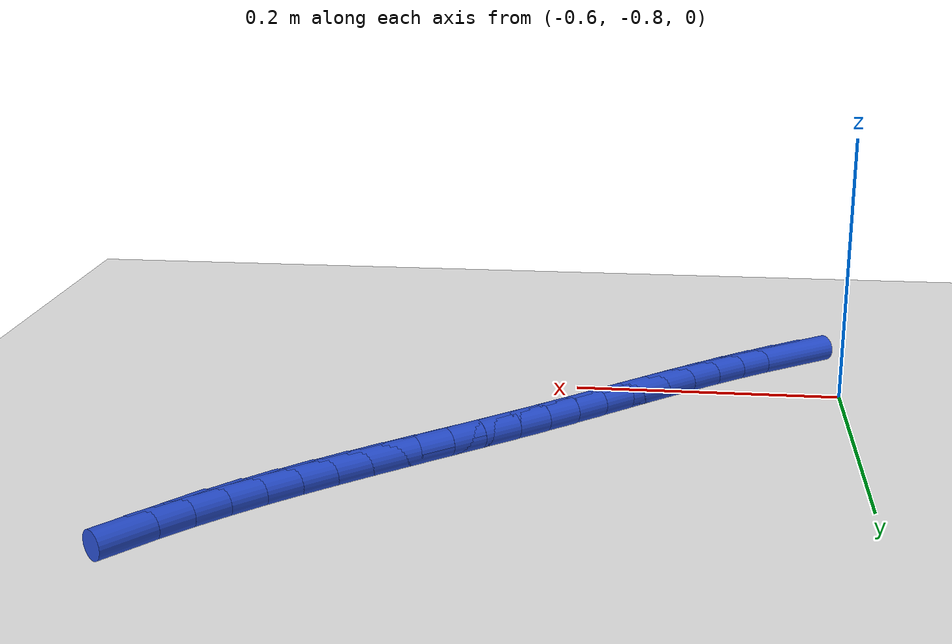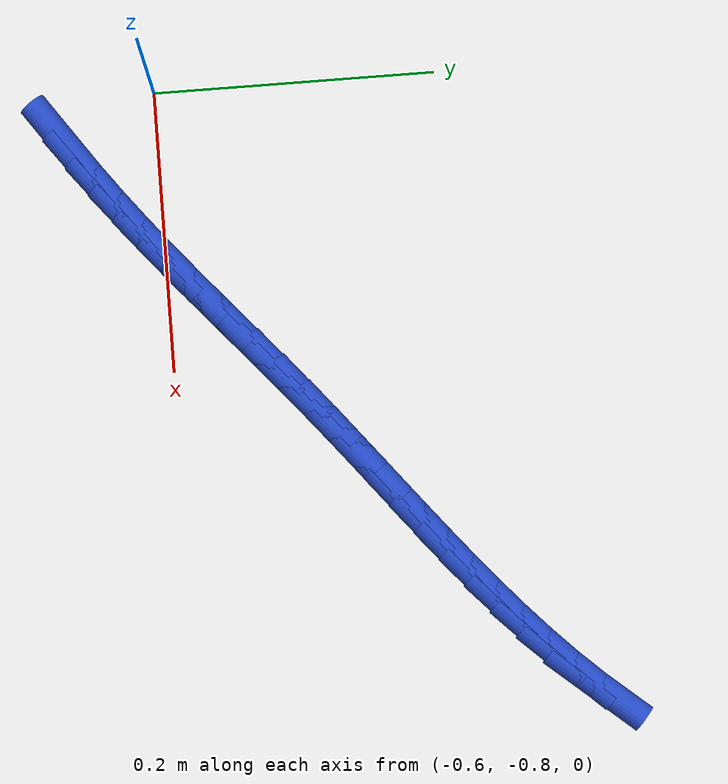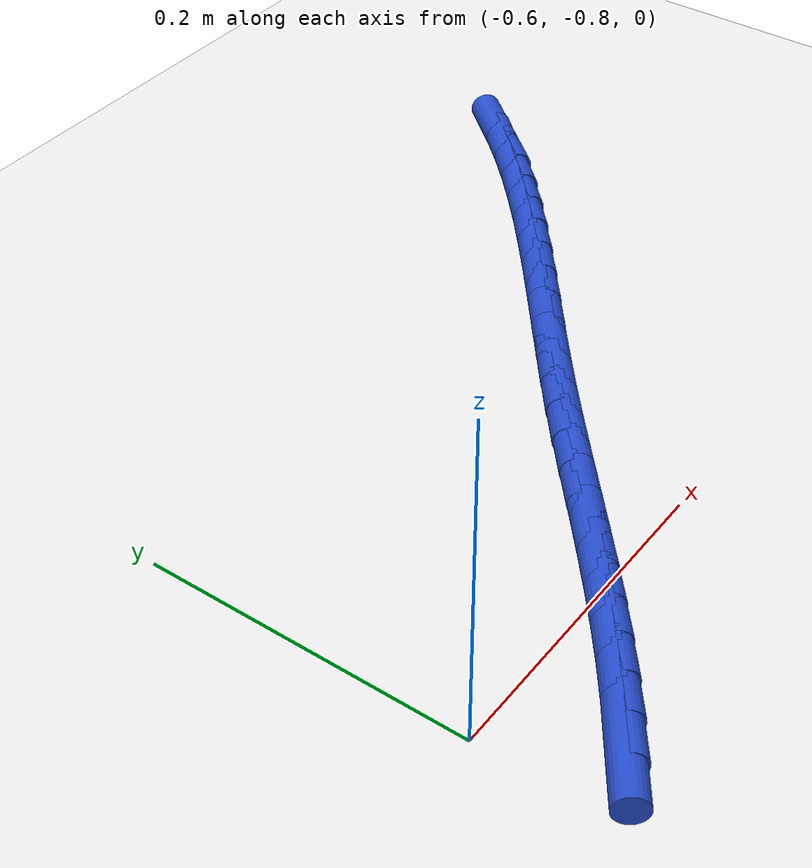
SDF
<sdf version="1.6">
 <world name="default">
  <model name="ground_plane">
   <static>1</static>
   <link name="link">
    <collision name="collision">
     <geometry><plane><normal>0 0 1</normal><size>100 100</size></plane></geometry>
     <surface><friction><ode><mu>100</mu><mu2>50</mu2></ode></friction></surface>
    </collision>
    <visual name="visual">
     <cast_shadows>0</cast_shadows>
     <geometry><plane><normal>0 0 1</normal><size>100 100</size></plane></geometry>
     <material>
      <script><uri>file://media/materials/scripts/gazebo.material</uri><name>Gazebo/WhiteGlow</name></script>
     </material>
    </visual>
   </link>
  </model>
  <model name="line">
   <link name="link_217">
    <pose>-0.5643939407456331 -0.863154302802389 0.01 0 1.57 0.6108181474038222</pose>
    <collision name="collision">
     <geometry><cylinder><radius>0.01</radius><length>0.08</length></cylinder></geometry>
    </collision>
    <visual name="visual">
     <material>
      <script><name>Gazebo/Blue</name><uri>file://media/materials/scripts/gazebo.material</uri></script>
     </material>
     <geometry><cylinder><radius>0.01</radius><length>0.08</length></cylinder></geometry>
    </visual>
   </link>
   <link name="link_218">
    <pose>-0.5437912853650246 -0.8487296140231655 0.01 0 1.57 0.6385582264810599</pose>
    <collision name="collision">
     <geometry><cylinder><radius>0.01</radius><length>0.08</length></cylinder></geometry>
    </collision>
    <visual name="visual">
     <material>
      <script><name>Gazebo/Blue</name><uri>file://media/materials/scripts/gazebo.material</uri></script>
     </material>
     <geometry><cylinder><radius>0.01</radius><length>0.08</length></cylinder></geometry>
    </visual>
   </link>
   <link name="link_219">
    <pose>-0.5236369599599335 -0.8337689532799369 0.01 0 1.57 0.6629778174523111</pose>
    <collision name="collision">
     <geometry><cylinder><radius>0.01</radius><length>0.08</length></cylinder></geometry>
    </collision>
    <visual name="visual">
     <material>
      <script><name>Gazebo/Blue</name><uri>file://media/materials/scripts/gazebo.material</uri></script>
     </material>
     <geometry><cylinder><radius>0.01</radius><length>0.08</length></cylinder></geometry>
    </visual>
   </link>
   <link name="link_220">
    <pose>-0.5038716810620356 -0.8183344949943777 0.01 0 1.57 0.6826916353248865</pose>
    <collision name="collision">
     <geometry><cylinder><radius>0.01</radius><length>0.08</length></cylinder></geometry>
    </collision>
    <visual name="visual">
     <material>
      <script><name>Gazebo/Blue</name><uri>file://media/materials/scripts/gazebo.material</uri></script>
     </material>
     <geometry><cylinder><radius>0.01</radius><length>0.08</length></cylinder></geometry>
    </visual>
   </link>
   <link name="link_221">
    <pose>-0.4844101914603403 -0.8025099124812817 0.01 0 1.57 0.697651807118425</pose>
    <collision name="collision">
     <geometry><cylinder><radius>0.01</radius><length>0.08</length></cylinder></geometry>
    </collision>
    <visual name="visual">
     <material>
      <script><name>Gazebo/Blue</name><uri>file://media/materials/scripts/gazebo.material</uri></script>
     </material>
     <geometry><cylinder><radius>0.01</radius><length>0.08</length></cylinder></geometry>
    </visual>
   </link>
   <link name="link_222">
    <pose>-0.46516723090306256 -0.7863788815723542 0.01 0 1.57 0.7078434625185194</pose>
    <collision name="collision">
     <geometry><cylinder><radius>0.01</radius><length>0.08</length></cylinder></geometry>
    </collision>
    <visual name="visual">
     <material>
      <script><name>Gazebo/Blue</name><uri>file://media/materials/scripts/gazebo.material</uri></script>
     </material>
     <geometry><cylinder><radius>0.01</radius><length>0.08</length></cylinder></geometry>
    </visual>
   </link>
   <link name="link_223">
    <pose>-0.4460575391384178 -0.7700250780993012 0.01 0 1.57 0.713274484657549</pose>
    <collision name="collision">
     <geometry><cylinder><radius>0.01</radius><length>0.08</length></cylinder></geometry>
    </collision>
    <visual name="visual">
     <material>
      <script><name>Gazebo/Blue</name><uri>file://media/materials/scripts/gazebo.material</uri></script>
     </material>
     <geometry><cylinder><radius>0.01</radius><length>0.08</length></cylinder></geometry>
    </visual>
   </link>
   <link name="link_224">
    <pose>-0.4269958559146215 -0.753532177893829 0.01 0 1.57 0.7139684177772284</pose>
    <collision name="collision">
     <geometry><cylinder><radius>0.01</radius><length>0.08</length></cylinder></geometry>
    </collision>
    <visual name="visual">
     <material>
      <script><name>Gazebo/Blue</name><uri>file://media/materials/scripts/gazebo.material</uri></script>
     </material>
     <geometry><cylinder><radius>0.01</radius><length>0.08</length></cylinder></geometry>
    </visual>
   </link>
   <link name="link_225">
    <pose>-0.40789692097988933 -0.7369838567876436 0.01 0 1.57 0.7099605510495371</pose>
    <collision name="collision">
     <geometry><cylinder><radius>0.01</radius><length>0.08</length></cylinder></geometry>
    </collision>
    <visual name="visual">
     <material>
      <script><name>Gazebo/Blue</name><uri>file://media/materials/scripts/gazebo.material</uri></script>
     </material>
     <geometry><cylinder><radius>0.01</radius><length>0.08</length></cylinder></geometry>
    </visual>
   </link>
   <link name="link_226">
    <pose>-0.3886754740824368 -0.7204637906124506 0.01 0 1.57 0.7012971550828899</pose>
    <collision name="collision">
     <geometry><cylinder><radius>0.01</radius><length>0.08</length></cylinder></geometry>
    </collision>
    <visual name="visual">
     <material>
      <script><name>Gazebo/Blue</name><uri>file://media/materials/scripts/gazebo.material</uri></script>
     </material>
     <geometry><cylinder><radius>0.01</radius><length>0.08</length></cylinder></geometry>
    </visual>
   </link>
   <link name="link_227">
    <pose>-0.3692462549704793 -0.7040556551999564 0.01 0 1.57 0.6886644737292039</pose>
    <collision name="collision">
     <geometry><cylinder><radius>0.01</radius><length>0.08</length></cylinder></geometry>
    </collision>
    <visual name="visual">
     <material>
      <script><name>Gazebo/Blue</name><uri>file://media/materials/scripts/gazebo.material</uri></script>
     </material>
     <geometry><cylinder><radius>0.01</radius><length>0.08</length></cylinder></geometry>
    </visual>
   </link>
   <link name="link_228">
    <pose>-0.34953650487341825 -0.6878326916265564 0.01 0 1.57 0.6780383504850213</pose>
    <collision name="collision">
     <geometry><cylinder><radius>0.01</radius><length>0.08</length></cylinder></geometry>
    </collision>
    <visual name="visual">
     <material>
      <script><name>Gazebo/Blue</name><uri>file://media/materials/scripts/gazebo.material</uri></script>
     </material>
     <geometry><cylinder><radius>0.01</radius><length>0.08</length></cylinder></geometry>
    </visual>
   </link>
   <link name="link_229">
    <pose>-0.3295921553744258 -0.6717690723238254 0.01 0 1.57 0.672637043150542</pose>
    <collision name="collision">
     <geometry><cylinder><radius>0.01</radius><length>0.08</length></cylinder></geometry>
    </collision>
    <visual name="visual">
     <material>
      <script><name>Gazebo/Blue</name><uri>file://media/materials/scripts/gazebo.material</uri></script>
     </material>
     <geometry><cylinder><radius>0.01</radius><length>0.08</length></cylinder></geometry>
    </visual>
   </link>
   <link name="link_230">
    <pose>-0.30952470855911884 -0.6557842392367341 0.01 0 1.57 0.6724438660807246</pose>
    <collision name="collision">
     <geometry><cylinder><radius>0.01</radius><length>0.08</length></cylinder></geometry>
    </collision>
    <visual name="visual">
     <material>
      <script><name>Gazebo/Blue</name><uri>file://media/materials/scripts/gazebo.material</uri></script>
     </material>
     <geometry><cylinder><radius>0.01</radius><length>0.08</length></cylinder></geometry>
    </visual>
   </link>
   <link name="link_231">
    <pose>-0.2894463565904839 -0.6397970583154236 0.01 0 1.57 0.6774519039565016</pose>
    <collision name="collision">
     <geometry><cylinder><radius>0.01</radius><length>0.08</length></cylinder></geometry>
    </collision>
    <visual name="visual">
     <material>
      <script><name>Gazebo/Blue</name><uri>file://media/materials/scripts/gazebo.material</uri></script>
     </material>
     <geometry><cylinder><radius>0.01</radius><length>0.08</length></cylinder></geometry>
    </visual>
   </link>
   <link name="link_232">
    <pose>-0.2694692916315081 -0.6237263955100354 0.01 0 1.57 0.6876985886231753</pose>
    <collision name="collision">
     <geometry><cylinder><radius>0.01</radius><length>0.08</length></cylinder></geometry>
    </collision>
    <visual name="visual">
     <material>
      <script><name>Gazebo/Blue</name><uri>file://media/materials/scripts/gazebo.material</uri></script>
     </material>
     <geometry><cylinder><radius>0.01</radius><length>0.08</length></cylinder></geometry>
    </visual>
   </link>
   <link name="link_233">
    <pose>-0.24970570584517812 -0.6074911167707108 0.01 0 1.57 0.7032623005801644</pose>
    <collision name="collision">
     <geometry><cylinder><radius>0.01</radius><length>0.08</length></cylinder></geometry>
    </collision>
    <visual name="visual">
     <material>
      <script><name>Gazebo/Blue</name><uri>file://media/materials/scripts/gazebo.material</uri></script>
     </material>
     <geometry><cylinder><radius>0.01</radius><length>0.08</length></cylinder></geometry>
    </visual>
   </link>
   <link name="link_234">
    <pose>-0.23026779139448106 -0.591010088047591 0.01 0 1.57 0.7242551788820438</pose>
    <collision name="collision">
     <geometry><cylinder><radius>0.01</radius><length>0.08</length></cylinder></geometry>
    </collision>
    <visual name="visual">
     <material>
      <script><name>Gazebo/Blue</name><uri>file://media/materials/scripts/gazebo.material</uri></script>
     </material>
     <geometry><cylinder><radius>0.01</radius><length>0.08</length></cylinder></geometry>
    </visual>
   </link>
   <link name="link_235">
    <pose>-0.21126774044240393 -0.5742021752908179 0.01 0 1.57 0.7508113052599661</pose>
    <collision name="collision">
     <geometry><cylinder><radius>0.01</radius><length>0.08</length></cylinder></geometry>
    </collision>
    <visual name="visual">
     <material>
      <script><name>Gazebo/Blue</name><uri>file://media/materials/scripts/gazebo.material</uri></script>
     </material>
     <geometry><cylinder><radius>0.01</radius><length>0.08</length></cylinder></geometry>
    </visual>
   </link>
   <link name="link_236">
    <pose>-0.19281774515193312 -0.556986244450532 0.01 0 1.57 0.7830691199898909</pose>
    <collision name="collision">
     <geometry><cylinder><radius>0.01</radius><length>0.08</length></cylinder></geometry>
    </collision>
    <visual name="visual">
     <material>
      <script><name>Gazebo/Blue</name><uri>file://media/materials/scripts/gazebo.material</uri></script>
     </material>
     <geometry><cylinder><radius>0.01</radius><length>0.08</length></cylinder></geometry>
    </visual>
   </link>
   <link name="link_237">
    <pose>-0.1750299976860568 -0.5392811614768761 0.01 0 1.57 0.8211468547019445</pose>
    <collision name="collision">
     <geometry><cylinder><radius>0.01</radius><length>0.08</length></cylinder></geometry>
    </collision>
    <visual name="visual">
     <material>
      <script><name>Gazebo/Blue</name><uri>file://media/materials/scripts/gazebo.material</uri></script>
     </material>
     <geometry><cylinder><radius>0.01</radius><length>0.08</length></cylinder></geometry>
    </visual>
   </link>
   <link name="link_238">
    <pose>-0.15801669020776118 -0.5210057923199908 0.01 0 1.57 0.865110138529622</pose>
    <collision name="collision">
     <geometry><cylinder><radius>0.01</radius><length>0.08</length></cylinder></geometry>
    </collision>
    <visual name="visual">
     <material>
      <script><name>Gazebo/Blue</name><uri>file://media/materials/scripts/gazebo.material</uri></script>
     </material>
     <geometry><cylinder><radius>0.01</radius><length>0.08</length></cylinder></geometry>
    </visual>
   </link>
  </model>
 </world>
</sdf>
